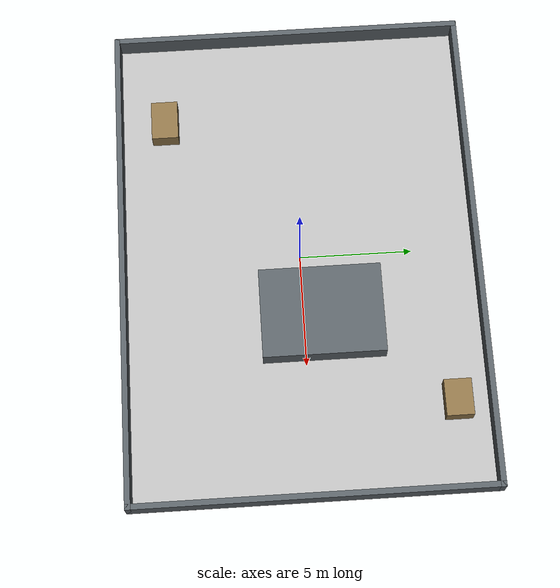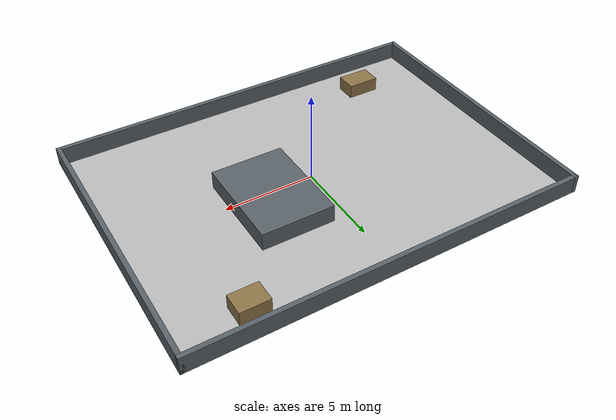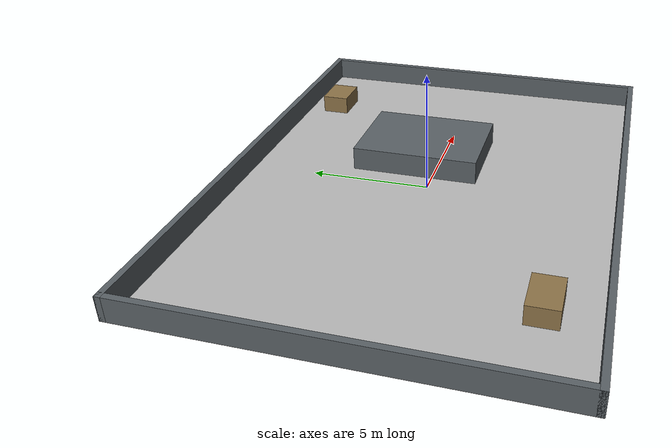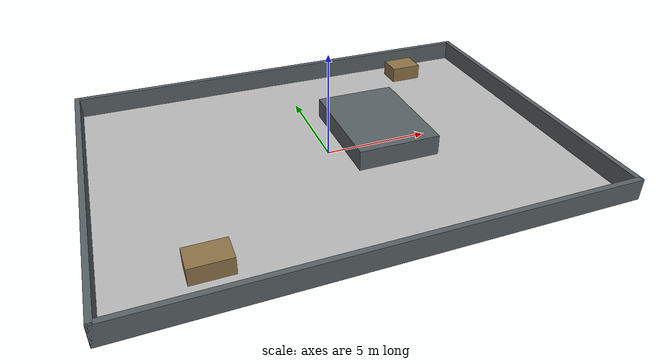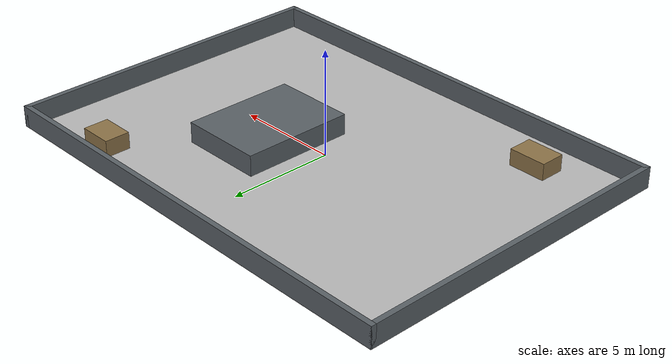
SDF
<?xml version="1.0"?>
<sdf version="1.6">
  <world name="default">
    <gravity>0 0 -9.8</gravity>
    <physics name="default_physics" type="ode">
      <max_step_size>0.002</max_step_size>
      <real_time_factor>1</real_time_factor>
      <real_time_update_rate>500</real_time_update_rate>
    </physics>
    <include><uri>model://sun</uri></include>
    <model name="ground_plane">
      <static>true</static>
      <link name="link">
        <collision name="collision">
          <geometry><box><size>22.000 16.000 0.02</size></box></geometry>
        </collision>
        <visual name="visual">
          <geometry><box><size>22.000 16.000 0.02</size></box></geometry>
          <material>
            <ambient>0.72 0.72 0.72 1</ambient>
            <diffuse>0.72 0.72 0.72 1</diffuse>
          </material>
        </visual>
      </link>
    </model>

    <model name="wall_north">
      <static>true</static>
      <pose>0.000 7.875 0.500 0 0 0</pose>
      <link name="link">
        <collision name="collision">
          <geometry><box><size>22.000 0.250 1.000</size></box></geometry>
        </collision>
        <visual name="visual">
          <geometry><box><size>22.000 0.250 1.000</size></box></geometry>
          <material>
            <ambient>0.35 0.38 0.40 1</ambient>
            <diffuse>0.35 0.38 0.40 1</diffuse>
          </material>
        </visual>
      </link>
    </model>

    <model name="wall_south">
      <static>true</static>
      <pose>0.000 -7.875 0.500 0 0 0</pose>
      <link name="link">
        <collision name="collision">
          <geometry><box><size>22.000 0.250 1.000</size></box></geometry>
        </collision>
        <visual name="visual">
          <geometry><box><size>22.000 0.250 1.000</size></box></geometry>
          <material>
            <ambient>0.35 0.38 0.40 1</ambient>
            <diffuse>0.35 0.38 0.40 1</diffuse>
          </material>
        </visual>
      </link>
    </model>

    <model name="wall_west">
      <static>true</static>
      <pose>-10.875 0.000 0.500 0 0 0</pose>
      <link name="link">
        <collision name="collision">
          <geometry><box><size>0.250 16.000 1.000</size></box></geometry>
        </collision>
        <visual name="visual">
          <geometry><box><size>0.250 16.000 1.000</size></box></geometry>
          <material>
            <ambient>0.35 0.38 0.40 1</ambient>
            <diffuse>0.35 0.38 0.40 1</diffuse>
          </material>
        </visual>
      </link>
    </model>

    <model name="wall_east">
      <static>true</static>
      <pose>10.875 0.000 0.500 0 0 0</pose>
      <link name="link">
        <collision name="collision">
          <geometry><box><size>0.250 16.000 1.000</size></box></geometry>
        </collision>
        <visual name="visual">
          <geometry><box><size>0.250 16.000 1.000</size></box></geometry>
          <material>
            <ambient>0.35 0.38 0.40 1</ambient>
            <diffuse>0.35 0.38 0.40 1</diffuse>
          </material>
        </visual>
      </link>
    </model>

    <model name="route_choice_block">
      <static>true</static>
      <pose>2.800 0.800 0.500 0 0 0</pose>
      <link name="link">
        <collision name="collision">
          <geometry><box><size>4.000 5.400 1.000</size></box></geometry>
        </collision>
        <visual name="visual">
          <geometry><box><size>4.000 5.400 1.000</size></box></geometry>
          <material>
            <ambient>0.35 0.38 0.40 1</ambient>
            <diffuse>0.35 0.38 0.40 1</diffuse>
          </material>
        </visual>
      </link>
    </model>

    <model name="route_choice_upper_island">
      <static>true</static>
      <pose>7.000 6.400 0.400 0 0 0</pose>
      <link name="link">
        <collision name="collision">
          <geometry><box><size>1.600 1.200 0.800</size></box></geometry>
        </collision>
        <visual name="visual">
          <geometry><box><size>1.600 1.200 0.800</size></box></geometry>
          <material>
            <ambient>0.55 0.45 0.28 1</ambient>
            <diffuse>0.55 0.45 0.28 1</diffuse>
          </material>
        </visual>
      </link>
    </model>

    <model name="route_choice_lower_island">
      <static>true</static>
      <pose>-6.800 -5.800 0.400 0 0 0</pose>
      <link name="link">
        <collision name="collision">
          <geometry><box><size>1.800 1.200 0.800</size></box></geometry>
        </collision>
        <visual name="visual">
          <geometry><box><size>1.800 1.200 0.800</size></box></geometry>
          <material>
            <ambient>0.55 0.45 0.28 1</ambient>
            <diffuse>0.55 0.45 0.28 1</diffuse>
          </material>
        </visual>
      </link>
    </model>
  </world>
</sdf>
